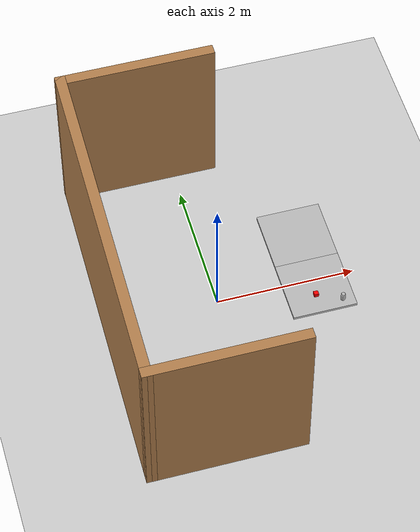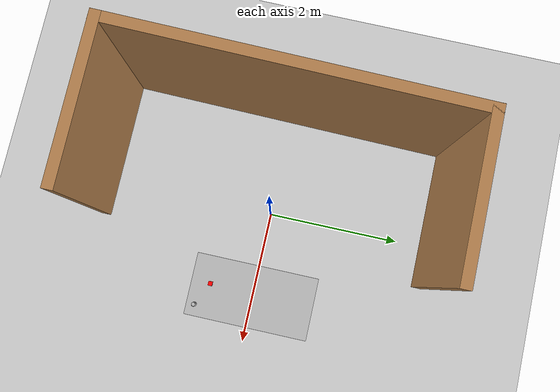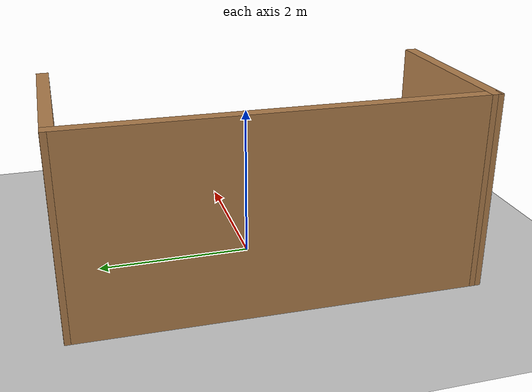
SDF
<sdf version="1.7">
 <world name="default">
  <light name="sun" type="directional">
   <pose>0 0 10 0 -0 0</pose>
   <diffuse>0.8 0.8 0.8 1</diffuse>
   <specular>0.2 0.2 0.2 1</specular>
   <attenuation>
    <range>1000</range>
    <constant>0.9</constant>
    <linear>0.01</linear>
    <quadratic>0.001</quadratic>
   </attenuation>
   <direction>-0.5 0.1 -0.9</direction>
   <spot><inner_angle>0</inner_angle><outer_angle>0</outer_angle><falloff>0</falloff></spot>
  </light>
  <model name="ground_plane">
   <static>1</static>
   <link name="link">
    <collision name="collision">
     <geometry><plane><normal>0 0 1</normal><size>100 100</size></plane></geometry>
     <surface>
      <contact><collide_bitmask>65535</collide_bitmask></contact>
      <friction><ode><mu>100</mu><mu2>50</mu2></ode></friction>
     </surface>
    </collision>
    <visual name="visual">
     <cast_shadows>0</cast_shadows>
     <geometry><plane><normal>0 0 1</normal><size>100 100</size></plane></geometry>
     <material>
      <script><uri>file://media/materials/scripts/gazebo.material</uri><name>Gazebo/Grey</name></script>
     </material>
    </visual>
   </link>
  </model>
  <gravity>0 0 -9.8</gravity>
  <magnetic_field>6e-06 2.3e-05 -4.2e-05</magnetic_field>
  <atmosphere type="adiabatic"/>
  <physics type="ode">
   <max_step_size>0.001</max_step_size>
   <real_time_factor>1</real_time_factor>
   <real_time_update_rate>1000</real_time_update_rate>
  </physics>
  <scene><ambient>0.4 0.4 0.4 1</ambient><background>0.7 0.7 0.7 1</background><shadows>1</shadows></scene>
  <spherical_coordinates>
   <surface_model>EARTH_WGS84</surface_model>
   <latitude_deg>0</latitude_deg>
   <longitude_deg>0</longitude_deg>
   <elevation>0</elevation>
   <heading_deg>0</heading_deg>
  </spherical_coordinates>
  <model name="pick_and_place">
   <pose>-0.53434 -0.040022 0 0 -0 0</pose>
   <link name="Wall_6">
    <collision name="Wall_6_Collision">
     <geometry><box><size>2.25 0.15 2.5</size></box></geometry>
     <pose>0 0 1.25 0 -0 0</pose>
    </collision>
    <visual name="Wall_6_Visual">
     <pose>0 0 1.25 0 -0 0</pose>
     <geometry><box><size>2.25 0.15 2.5</size></box></geometry>
     <material>
      <script><uri>file://media/materials/scripts/gazebo.material</uri><name>Gazebo/Wood</name></script>
      <ambient>1 1 1 1</ambient>
     </material>
     <meta><layer>0</layer></meta>
    </visual>
    <pose>-0.039436 -2.47911 0 0 -0 3.14159</pose>
   </link>
   <link name="Wall_8">
    <collision name="Wall_8_Collision">
     <geometry><box><size>5.10887 0.15 2.5</size></box></geometry>
     <pose>0 0 1.25 0 -0 0</pose>
    </collision>
    <visual name="Wall_8_Visual">
     <pose>0 0 1.25 0 -0 0</pose>
     <geometry><box><size>5.10887 0.15 2.5</size></box></geometry>
     <material>
      <script><uri>file://media/materials/scripts/gazebo.material</uri><name>Gazebo/Wood</name></script>
      <ambient>1 1 1 1</ambient>
     </material>
     <meta><layer>0</layer></meta>
    </visual>
    <pose>-1.0494 -0 0 0 -0 1.55465</pose>
   </link>
   <link name="Wall_9">
    <collision name="Wall_9_Collision">
     <geometry><box><size>2.25 0.15 2.5</size></box></geometry>
     <pose>0 0 1.25 0 -0 0</pose>
    </collision>
    <visual name="Wall_9_Visual">
     <pose>0 0 1.25 0 -0 0</pose>
     <geometry><box><size>2.25 0.15 2.5</size></box></geometry>
     <material>
      <script><uri>file://media/materials/scripts/gazebo.material</uri><name>Gazebo/Wood</name></script>
      <ambient>1 1 1 1</ambient>
     </material>
     <meta><layer>0</layer></meta>
    </visual>
    <pose>0.040638 2.47911 0 0 -0 0</pose>
   </link>
   <static>1</static>
  </model>
  <model name="cafe_table">
   <static>1</static>
   <link name="link">
    <collision name="surface">
     <pose>0 0 0.755 0 -0 0</pose>
     <geometry><box><size>0.913 0.913 0.04</size></box></geometry>
    </collision>
    <collision name="column">
     <pose>0 0 0.37 0 -0 0</pose>
     <geometry><box><size>0.042 0.042 0.74</size></box></geometry>
    </collision>
    <collision name="base">
     <pose>0 0 0.02 0 -0 0</pose>
     <geometry><box><size>0.56 0.56 0.04</size></box></geometry>
    </collision>
    <visual name="visual">
     <geometry><mesh><uri>model://cafe_table/meshes/cafe_table.dae</uri></mesh></geometry>
    </visual>
   </link>
   <pose>1.29234 0.455847 -0.257168 0 -0 0</pose>
  </model>
  <model name="cafe_table_0">
   <static>1</static>
   <link name="link">
    <collision name="surface">
     <pose>0 0 0.755 0 -0 0</pose>
     <geometry><box><size>0.913 0.913 0.04</size></box></geometry>
    </collision>
    <collision name="column">
     <pose>0 0 0.37 0 -0 0</pose>
     <geometry><box><size>0.042 0.042 0.74</size></box></geometry>
    </collision>
    <collision name="base">
     <pose>0 0 0.02 0 -0 0</pose>
     <geometry><box><size>0.56 0.56 0.04</size></box></geometry>
    </collision>
    <visual name="visual">
     <geometry><mesh><uri>model://cafe_table/meshes/cafe_table.dae</uri></mesh></geometry>
    </visual>
   </link>
   <pose>1.29234 -0.446961 -0.257168 0 -0 0</pose>
  </model>
  <model name="coke_can">
   <link name="link">
    <inertial>
     <pose>0 0 0.06 0 -0 0</pose>
     <mass>0.39</mass>
     <inertia>
      <ixx>0.00055575</ixx>
      <ixy>0</ixy>
      <ixz>0</ixz>
      <iyy>0.00055575</iyy>
      <iyz>0</iyz>
      <izz>0.0001755</izz>
     </inertia>
    </inertial>
    <collision name="collision">
     <pose>0.003937 0.004724 -0.18 0 -0 0</pose>
     <geometry><mesh><uri>model://coke_can/meshes/coke_can.dae</uri></mesh></geometry>
     <surface>
      <friction><ode><mu>0.1</mu><mu2>0.1</mu2></ode></friction>
      <contact><ode><kp>1e+07</kp><kd>1</kd><min_depth>0.001</min_depth><max_vel>0.1</max_vel></ode></contact>
     </surface>
    </collision>
    <visual name="visual">
     <pose>0.003937 0.004724 -0.18 0 -0 0</pose>
     <geometry><mesh><uri>model://coke_can/meshes/coke_can.dae</uri></mesh></geometry>
    </visual>
   </link>
   <pose>1.58076 -0.780332 0.514331 0.005197 0.005757 0.005659</pose>
  </model>
  <model name="unit_box_red">
   <link name="link">
    <inertial>
     <mass>1</mass>
     <inertia>
      <ixx>0.166667</ixx>
      <ixy>0</ixy>
      <ixz>0</ixz>
      <iyy>0.166667</iyy>
      <iyz>0</iyz>
      <izz>0.166667</izz>
     </inertia>
    </inertial>
    <visual name="visual">
     <geometry><box><size>0.06393 0.060568 0.060432</size></box></geometry>
     <material>
      <script><name>Gazebo/Grey</name><uri>file://media/materials/scripts/gazebo.material</uri></script>
      <shader type="pixel"><normal_map>__default__</normal_map></shader>
      <ambient>1 0 0 0</ambient>
      <diffuse>0.7 0.7 0.7 1</diffuse>
      <specular>0.01 0.01 0.01 1</specular>
      <emissive>0 0 0 1</emissive>
     </material>
    </visual>
    <collision name="collision">
     <geometry><box><size>0.06393 0.060568 0.060432</size></box></geometry>
     <surface>
      <friction>
       <ode><mu>0.1</mu><mu2>0.1</mu2><fdir1>0 0 0</fdir1><slip1>0</slip1><slip2>0</slip2></ode>
       <torsional>
        <coefficient>1</coefficient>
        <patch_radius>0</patch_radius>
        <surface_radius>0</surface_radius>
        <use_patch_radius>1</use_patch_radius>
        <ode><slip>0</slip></ode>
       </torsional>
      </friction>
      <bounce><restitution_coefficient>0</restitution_coefficient><threshold>1e+06</threshold></bounce>
      <contact>
       <collide_without_contact>0</collide_without_contact>
       <collide_without_contact_bitmask>1</collide_without_contact_bitmask>
       <collide_bitmask>1</collide_bitmask>
       <ode>
        <soft_cfm>0</soft_cfm>
        <soft_erp>0.2</soft_erp>
        <kp>1e+13</kp>
        <kd>1</kd>
        <max_vel>0.01</max_vel>
        <min_depth>0</min_depth>
       </ode>
       <bullet>
        <split_impulse>1</split_impulse>
        <split_impulse_penetration_threshold>-0.01</split_impulse_penetration_threshold>
        <soft_cfm>0</soft_cfm>
        <soft_erp>0.2</soft_erp>
        <kp>1e+13</kp>
        <kd>1</kd>
       </bullet>
      </contact>
     </surface>
    </collision>
   </link>
   <static>0</static>
   <pose>1.24147 -0.618122 0.548048 2e-06 -0 0.001975</pose>
  </model>
  <light name="user_directional_light_0" type="directional">
   <pose>-0.039511 1.75634 1 0 -0 0</pose>
   <diffuse>0.5 0.5 0.5 1</diffuse>
   <specular>0.1 0.1 0.1 1</specular>
   <direction>0.1 0.1 -0.9</direction>
   <attenuation>
    <range>20</range>
    <constant>0.5</constant>
    <linear>0.01</linear>
    <quadratic>0.001</quadratic>
   </attenuation>
  </light>
  <light name="user_directional_light_1" type="directional">
   <pose>0.024929 -1.38688 1 0 -0 0</pose>
   <diffuse>0.5 0.5 0.5 1</diffuse>
   <specular>0.1 0.1 0.1 1</specular>
   <direction>0.1 0.1 -0.9</direction>
   <attenuation>
    <range>20</range>
    <constant>0.5</constant>
    <linear>0.01</linear>
    <quadratic>0.001</quadratic>
   </attenuation>
  </light>
  <light name="user_directional_light_2" type="directional">
   <pose>-0.65635 1.63104 1 0 -0 0</pose>
   <diffuse>0.5 0.5 0.5 1</diffuse>
   <specular>0.1 0.1 0.1 1</specular>
   <direction>0.1 0.1 -0.9</direction>
   <attenuation>
    <range>20</range>
    <constant>0.5</constant>
    <linear>0.01</linear>
    <quadratic>0.001</quadratic>
   </attenuation>
  </light>
 </world>
</sdf>
